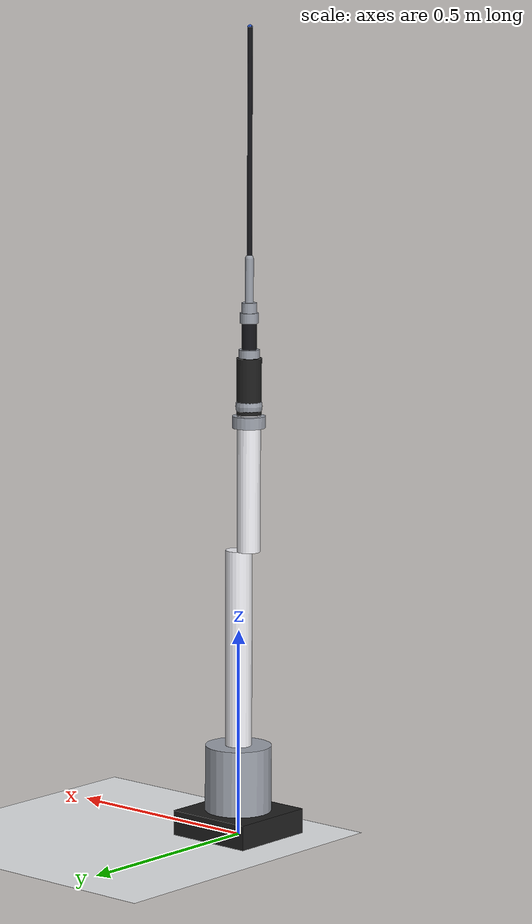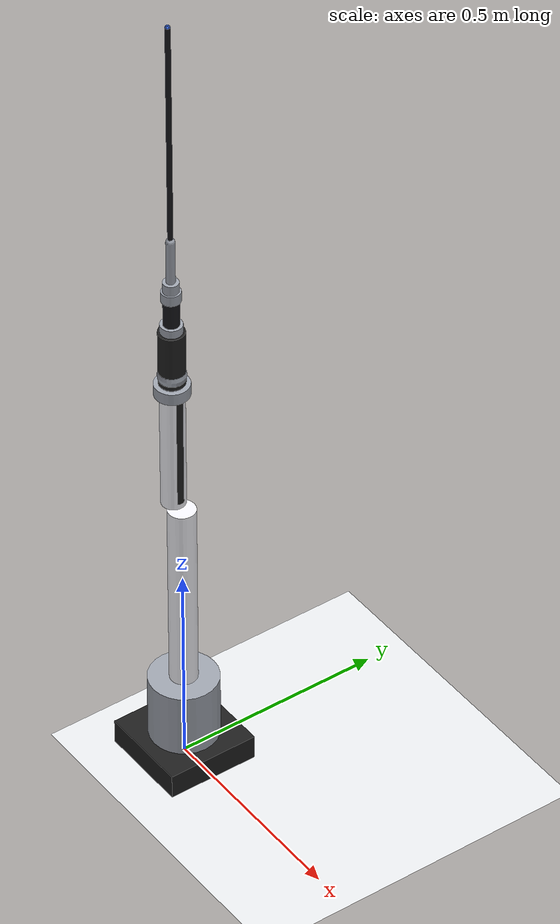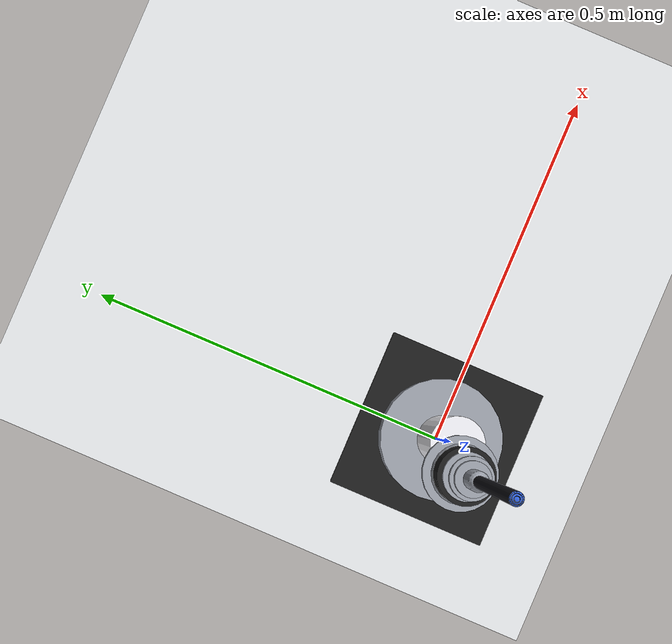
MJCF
<mujoco model="soloassist_rcm_mirror">
  <compiler angle="radian" autolimits="true"/>
  <option timestep="0.002" integrator="implicitfast" gravity="0 0 -9.81"/>
  <visual>
    <headlight ambient="0.35 0.35 0.35" diffuse="0.6 0.6 0.6" specular="0.15 0.15 0.15"/>
    <rgba haze="0.15 0.2 0.25 1"/>
  </visual>
  <asset>
    <texture name="grid" type="2d" builtin="checker" width="256" height="256"
             rgb1="0.88 0.89 0.90" rgb2="0.95 0.96 0.97"/>
    <material name="floor_mat" texture="grid" texrepeat="8 8" reflectance="0.1"/>
    <material name="shell_white" rgba="0.96 0.96 0.98 1"/>
    <material name="carbon_black" rgba="0.12 0.12 0.12 1"/>
    <material name="metal_gray" rgba="0.62 0.64 0.68 1"/>
    <material name="scope_black" rgba="0.08 0.08 0.1 1"/>
    <material name="pivot_red" rgba="0.9 0.2 0.2 1"/>
  </asset>

  <worldbody>
    <geom name="floor" type="plane" size="1.5 1.5 0.1" material="floor_mat"/>
    <light name="room_light" pos="0 0 2.5" dir="0 0 -1"/>

    <body name="pivot_marker" mocap="true" pos="0 0 0.5">
      <geom name="pivot_geom" type="sphere" size="0.01" rgba="0.9 0.2 0.2 0.8" contype="0" conaffinity="0"/>
      <site name="pivot_site" type="sphere" size="0.005" rgba="0.9 0.2 0.2 1"/>
    </body>

    <body name="base_mount" pos="0 0 0">
      <inertial pos="0 0 0.11" mass="4.8" diaginertia="0.045 0.045 0.020"/>
      <geom type="cylinder" pos="0 0 0.11" size="0.08 0.11" material="metal_gray"/>
      <geom type="box" pos="0 0 0.03" size="0.11 0.11 0.03" material="carbon_black"/>

      <body name="shoulder_link" pos="0 0 0.22">
        <joint name="axis_1" type="hinge" axis="0 0 1" range="-3.14159265359 3.14159265359"
               damping="2.0" frictionloss="0.15"/>
        <inertial pos="0 0 0.238" mass="2.4" diaginertia="0.019 0.019 0.0045"/>
        <geom type="cylinder" pos="0 0 0.238" size="0.032 0.238" material="shell_white"/>

        <body name="upper_cantilever_link" pos="-0.03 0 0.476">
          <joint name="axis_2" type="hinge" axis="0 1 0" range="-3.14159265359 3.14159265359"
                 damping="3.5" frictionloss="0.2"/>
          <inertial pos="0 0 0.1645" mass="1.7" diaginertia="0.015769 0.015769 0.000666"/>
          <geom type="cylinder" pos="0 0 0.1645" size="0.028 0.1645" material="shell_white"/>
          <geom type="cylinder" pos="0.018 0 0.1645" size="0.012 0.150" material="carbon_black"/>
          <geom type="cylinder" pos="0 0 0.312" size="0.040 0.014" material="metal_gray"/>

          <body name="elbow_link" pos="0 0 0.329">
            <joint name="axis_3" type="hinge" axis="0 1 0" range="-3.14159265359 3.14159265359"
                   damping="2.8" frictionloss="0.15"/>
            <inertial pos="0 0 0.0675" mass="0.55" diaginertia="0.000912 0.000912 0.000248"/>
            <geom type="cylinder" pos="0 0 0.0675" size="0.03 0.0675" material="carbon_black"/>
            <geom type="sphere" pos="0 0 0.02" size="0.032" material="metal_gray"/>

            <body name="distal_indexed_link" pos="0 0 0.135">
              <joint name="axis_4_manual_index" type="hinge" axis="0 0 1" range="-3.14159265359 3.14159265359"
                     damping="12.0" frictionloss="8.0"/>
              <inertial pos="0 0 0.0475" mass="0.30" diaginertia="0.000239 0.000239 0.000049"/>
              <geom type="cylinder" pos="0 0 0.0475" size="0.018 0.0475" material="scope_black"/>
              <geom type="cylinder" pos="0 0 0.01" size="0.025 0.01" material="metal_gray"/>
              <site name="gimbal_base_site" pos="0 0 0.095" size="0.006" rgba="0.2 0.7 0.2 1"/>

              <body name="gimbal_outer_link" pos="0 0 0.095">
                <joint name="axis_5_gimbal_yaw" type="hinge" axis="0 0 1" range="-3.14159265359 3.14159265359"
                       damping="0.08" frictionloss="0.01"/>
                <inertial pos="0 0 0" mass="0.18" diaginertia="0.00003 0.00003 0.000044"/>
                <geom type="cylinder" pos="0 0 0" size="0.022 0.012" material="metal_gray"/>
                <geom type="cylinder" pos="0 0 -0.018" size="0.010 0.008" material="metal_gray"/>

                <body name="scope_frame">
                  <joint name="axis_6_gimbal_pitch" type="hinge" axis="1 0 0" range="-1.90 1.90"
                         damping="0.08" frictionloss="0.01"/>
                  <inertial pos="0 0 0.22" mass="0.77" diaginertia="0.00363 0.00363 0.00003"/>
                  <geom type="capsule" fromto="0 0 0 0 0 0.14" size="0.010" material="metal_gray"/>
                  <geom type="capsule" fromto="0 0 0.12 0 0 0.68" size="0.006" material="scope_black"/>
                  <geom type="cylinder" pos="0 0 0.02" size="0.018 0.016" material="metal_gray"/>
                  <site name="shaft_tip_site" pos="0 0 0.68" size="0.006" rgba="0.2 0.4 0.9 1"/>
                </body>
              </body>
            </body>
          </body>
        </body>
      </body>
    </body>
  </worldbody>

  <actuator>
    <position name="act_axis_1" joint="axis_1" kp="420" kv="28" ctrlrange="-3.14159265359 3.14159265359"/>
    <position name="act_axis_2" joint="axis_2" kp="460" kv="30" ctrlrange="-3.14159265359 3.14159265359"/>
    <position name="act_axis_3" joint="axis_3" kp="400" kv="28" ctrlrange="-3.14159265359 3.14159265359"/>
    <position name="act_axis_4_manual_index" joint="axis_4_manual_index" kp="500" kv="28"
              ctrlrange="-3.14159265359 3.14159265359"/>
    <position name="act_axis_5_gimbal_yaw" joint="axis_5_gimbal_yaw" kp="220" kv="18"
              ctrlrange="-3.14159265359 3.14159265359"/>
    <position name="act_axis_6_gimbal_pitch" joint="axis_6_gimbal_pitch" kp="220" kv="18"
              ctrlrange="-1.90 1.90"/>
  </actuator>
</mujoco>
